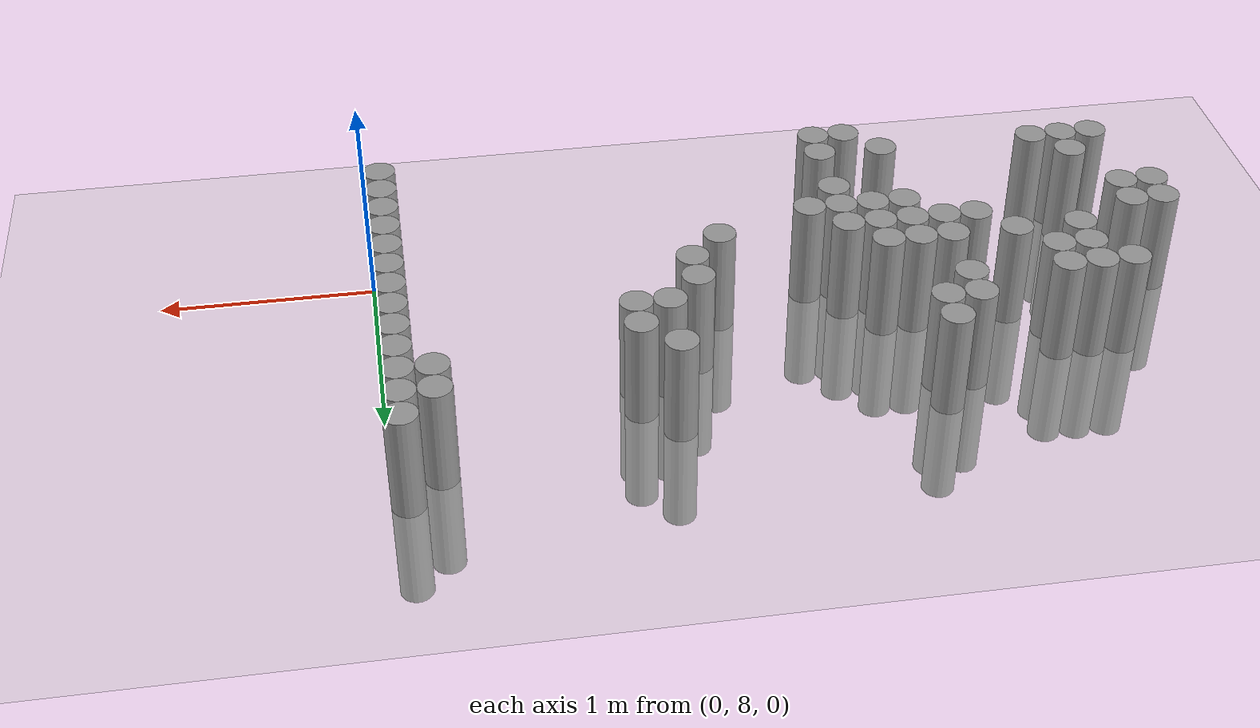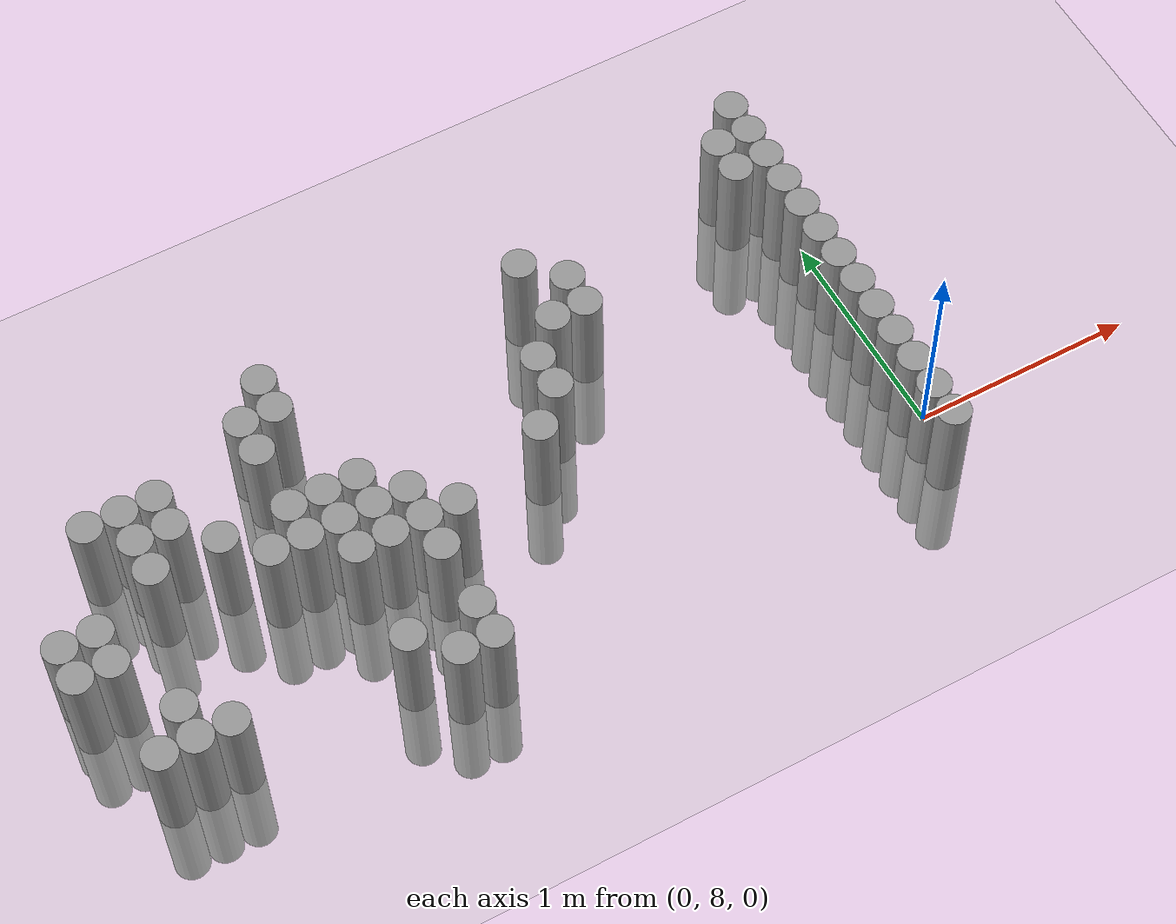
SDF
<sdf version="1.6">
 <world name="default">
  <model name="ground_plane">
   <static>1</static>
   <static>1</static>
   <link name="link">
    <collision name="collision">
     <geometry><plane><normal>0 0 1</normal><size>100 100</size></plane></geometry>
     <surface><friction><ode><mu>100</mu><mu2>50</mu2></ode></friction></surface>
    </collision>
    <visual name="visual">
     <cast_shadows>0</cast_shadows>
     <geometry><plane><normal>0 0 1</normal><size>100 100</size></plane></geometry>
     <material>
      <script><uri>file://media/materials/scripts/gazebo.material</uri><name>Gazebo/Grey</name></script>
     </material>
    </visual>
   </link>
  </model>
  <model name="unit_cylinder_162">
   <static>1</static>
   <pose>-3.675000 8.325000 0.000000 0.000000 0.000000 0.000000</pose>
   <link name="link">
    <inertial>
     <mass>1</mass>
     <inertia><ixx>0.145833</ixx><ixy>0</ixy><ixz>0</ixz><iyy>0.145833</iyy><iyz>0</iyz><izz>0.125</izz></inertia>
    </inertial>
    <collision name="collision">
     <geometry><cylinder><radius>0.075000</radius><length>1</length></cylinder></geometry>
    </collision>
    <visual name="visual">
     <geometry><cylinder><radius>0.075000</radius><length>1</length></cylinder></geometry>
     <material>
      <script><name>Gazebo/Grey</name><uri>file://media/materials/scripts/gazebo.material</uri></script>
     </material>
    </visual>
   </link>
  </model>
  <model name="unit_cylinder_163">
   <static>1</static>
   <pose>-3.675000 8.475000 0.000000 0.000000 0.000000 0.000000</pose>
   <link name="link">
    <inertial>
     <mass>1</mass>
     <inertia><ixx>0.145833</ixx><ixy>0</ixy><ixz>0</ixz><iyy>0.145833</iyy><iyz>0</iyz><izz>0.125</izz></inertia>
    </inertial>
    <collision name="collision">
     <geometry><cylinder><radius>0.075000</radius><length>1</length></cylinder></geometry>
    </collision>
    <visual name="visual">
     <geometry><cylinder><radius>0.075000</radius><length>1</length></cylinder></geometry>
     <material>
      <script><name>Gazebo/Grey</name><uri>file://media/materials/scripts/gazebo.material</uri></script>
     </material>
    </visual>
   </link>
  </model>
  <model name="unit_cylinder_168">
   <static>1</static>
   <pose>-3.525000 7.875000 0.000000 0.000000 0.000000 0.000000</pose>
   <link name="link">
    <inertial>
     <mass>1</mass>
     <inertia><ixx>0.145833</ixx><ixy>0</ixy><ixz>0</ixz><iyy>0.145833</iyy><iyz>0</iyz><izz>0.125</izz></inertia>
    </inertial>
    <collision name="collision">
     <geometry><cylinder><radius>0.075000</radius><length>1</length></cylinder></geometry>
    </collision>
    <visual name="visual">
     <geometry><cylinder><radius>0.075000</radius><length>1</length></cylinder></geometry>
     <material>
      <script><name>Gazebo/Grey</name><uri>file://media/materials/scripts/gazebo.material</uri></script>
     </material>
    </visual>
   </link>
  </model>
  <model name="unit_cylinder_169">
   <static>1</static>
   <pose>-3.525000 8.325000 0.000000 0.000000 0.000000 0.000000</pose>
   <link name="link">
    <inertial>
     <mass>1</mass>
     <inertia><ixx>0.145833</ixx><ixy>0</ixy><ixz>0</ixz><iyy>0.145833</iyy><iyz>0</iyz><izz>0.125</izz></inertia>
    </inertial>
    <collision name="collision">
     <geometry><cylinder><radius>0.075000</radius><length>1</length></cylinder></geometry>
    </collision>
    <visual name="visual">
     <geometry><cylinder><radius>0.075000</radius><length>1</length></cylinder></geometry>
     <material>
      <script><name>Gazebo/Grey</name><uri>file://media/materials/scripts/gazebo.material</uri></script>
     </material>
    </visual>
   </link>
  </model>
  <model name="unit_cylinder_170">
   <static>1</static>
   <pose>-3.525000 8.475000 0.000000 0.000000 0.000000 0.000000</pose>
   <link name="link">
    <inertial>
     <mass>1</mass>
     <inertia><ixx>0.145833</ixx><ixy>0</ixy><ixz>0</ixz><iyy>0.145833</iyy><iyz>0</iyz><izz>0.125</izz></inertia>
    </inertial>
    <collision name="collision">
     <geometry><cylinder><radius>0.075000</radius><length>1</length></cylinder></geometry>
    </collision>
    <visual name="visual">
     <geometry><cylinder><radius>0.075000</radius><length>1</length></cylinder></geometry>
     <material>
      <script><name>Gazebo/Grey</name><uri>file://media/materials/scripts/gazebo.material</uri></script>
     </material>
    </visual>
   </link>
  </model>
  <model name="unit_cylinder_173">
   <static>1</static>
   <pose>-3.375000 7.875000 0.000000 0.000000 0.000000 0.000000</pose>
   <link name="link">
    <inertial>
     <mass>1</mass>
     <inertia><ixx>0.145833</ixx><ixy>0</ixy><ixz>0</ixz><iyy>0.145833</iyy><iyz>0</iyz><izz>0.125</izz></inertia>
    </inertial>
    <collision name="collision">
     <geometry><cylinder><radius>0.075000</radius><length>1</length></cylinder></geometry>
    </collision>
    <visual name="visual">
     <geometry><cylinder><radius>0.075000</radius><length>1</length></cylinder></geometry>
     <material>
      <script><name>Gazebo/Grey</name><uri>file://media/materials/scripts/gazebo.material</uri></script>
     </material>
    </visual>
   </link>
  </model>
  <model name="unit_cylinder_174">
   <static>1</static>
   <pose>-3.375000 8.025000 0.000000 0.000000 0.000000 0.000000</pose>
   <link name="link">
    <inertial>
     <mass>1</mass>
     <inertia><ixx>0.145833</ixx><ixy>0</ixy><ixz>0</ixz><iyy>0.145833</iyy><iyz>0</iyz><izz>0.125</izz></inertia>
    </inertial>
    <collision name="collision">
     <geometry><cylinder><radius>0.075000</radius><length>1</length></cylinder></geometry>
    </collision>
    <visual name="visual">
     <geometry><cylinder><radius>0.075000</radius><length>1</length></cylinder></geometry>
     <material>
      <script><name>Gazebo/Grey</name><uri>file://media/materials/scripts/gazebo.material</uri></script>
     </material>
    </visual>
   </link>
  </model>
  <model name="unit_cylinder_175">
   <static>1</static>
   <pose>-3.375000 8.925000 0.000000 0.000000 0.000000 0.000000</pose>
   <link name="link">
    <inertial>
     <mass>1</mass>
     <inertia><ixx>0.145833</ixx><ixy>0</ixy><ixz>0</ixz><iyy>0.145833</iyy><iyz>0</iyz><izz>0.125</izz></inertia>
    </inertial>
    <collision name="collision">
     <geometry><cylinder><radius>0.075000</radius><length>1</length></cylinder></geometry>
    </collision>
    <visual name="visual">
     <geometry><cylinder><radius>0.075000</radius><length>1</length></cylinder></geometry>
     <material>
      <script><name>Gazebo/Grey</name><uri>file://media/materials/scripts/gazebo.material</uri></script>
     </material>
    </visual>
   </link>
  </model>
  <model name="unit_cylinder_176">
   <static>1</static>
   <pose>-3.225000 7.875000 0.000000 0.000000 0.000000 0.000000</pose>
   <link name="link">
    <inertial>
     <mass>1</mass>
     <inertia><ixx>0.145833</ixx><ixy>0</ixy><ixz>0</ixz><iyy>0.145833</iyy><iyz>0</iyz><izz>0.125</izz></inertia>
    </inertial>
    <collision name="collision">
     <geometry><cylinder><radius>0.075000</radius><length>1</length></cylinder></geometry>
    </collision>
    <visual name="visual">
     <geometry><cylinder><radius>0.075000</radius><length>1</length></cylinder></geometry>
     <material>
      <script><name>Gazebo/Grey</name><uri>file://media/materials/scripts/gazebo.material</uri></script>
     </material>
    </visual>
   </link>
  </model>
  <model name="unit_cylinder_177">
   <static>1</static>
   <pose>-3.225000 8.625000 0.000000 0.000000 0.000000 0.000000</pose>
   <link name="link">
    <inertial>
     <mass>1</mass>
     <inertia><ixx>0.145833</ixx><ixy>0</ixy><ixz>0</ixz><iyy>0.145833</iyy><iyz>0</iyz><izz>0.125</izz></inertia>
    </inertial>
    <collision name="collision">
     <geometry><cylinder><radius>0.075000</radius><length>1</length></cylinder></geometry>
    </collision>
    <visual name="visual">
     <geometry><cylinder><radius>0.075000</radius><length>1</length></cylinder></geometry>
     <material>
      <script><name>Gazebo/Grey</name><uri>file://media/materials/scripts/gazebo.material</uri></script>
     </material>
    </visual>
   </link>
  </model>
  <model name="unit_cylinder_178">
   <static>1</static>
   <pose>-3.225000 8.775000 0.000000 0.000000 0.000000 0.000000</pose>
   <link name="link">
    <inertial>
     <mass>1</mass>
     <inertia><ixx>0.145833</ixx><ixy>0</ixy><ixz>0</ixz><iyy>0.145833</iyy><iyz>0</iyz><izz>0.125</izz></inertia>
    </inertial>
    <collision name="collision">
     <geometry><cylinder><radius>0.075000</radius><length>1</length></cylinder></geometry>
    </collision>
    <visual name="visual">
     <geometry><cylinder><radius>0.075000</radius><length>1</length></cylinder></geometry>
     <material>
      <script><name>Gazebo/Grey</name><uri>file://media/materials/scripts/gazebo.material</uri></script>
     </material>
    </visual>
   </link>
  </model>
  <model name="unit_cylinder_179">
   <static>1</static>
   <pose>-3.225000 8.925000 0.000000 0.000000 0.000000 0.000000</pose>
   <link name="link">
    <inertial>
     <mass>1</mass>
     <inertia><ixx>0.145833</ixx><ixy>0</ixy><ixz>0</ixz><iyy>0.145833</iyy><iyz>0</iyz><izz>0.125</izz></inertia>
    </inertial>
    <collision name="collision">
     <geometry><cylinder><radius>0.075000</radius><length>1</length></cylinder></geometry>
    </collision>
    <visual name="visual">
     <geometry><cylinder><radius>0.075000</radius><length>1</length></cylinder></geometry>
     <material>
      <script><name>Gazebo/Grey</name><uri>file://media/materials/scripts/gazebo.material</uri></script>
     </material>
    </visual>
   </link>
  </model>
  <model name="unit_cylinder_181">
   <static>1</static>
   <pose>-3.075000 8.775000 0.000000 0.000000 0.000000 0.000000</pose>
   <link name="link">
    <inertial>
     <mass>1</mass>
     <inertia><ixx>0.145833</ixx><ixy>0</ixy><ixz>0</ixz><iyy>0.145833</iyy><iyz>0</iyz><izz>0.125</izz></inertia>
    </inertial>
    <collision name="collision">
     <geometry><cylinder><radius>0.075000</radius><length>1</length></cylinder></geometry>
    </collision>
    <visual name="visual">
     <geometry><cylinder><radius>0.075000</radius><length>1</length></cylinder></geometry>
     <material>
      <script><name>Gazebo/Grey</name><uri>file://media/materials/scripts/gazebo.material</uri></script>
     </material>
    </visual>
   </link>
  </model>
  <model name="unit_cylinder_182">
   <static>1</static>
   <pose>-3.075000 8.925000 0.000000 0.000000 0.000000 0.000000</pose>
   <link name="link">
    <inertial>
     <mass>1</mass>
     <inertia><ixx>0.145833</ixx><ixy>0</ixy><ixz>0</ixz><iyy>0.145833</iyy><iyz>0</iyz><izz>0.125</izz></inertia>
    </inertial>
    <collision name="collision">
     <geometry><cylinder><radius>0.075000</radius><length>1</length></cylinder></geometry>
    </collision>
    <visual name="visual">
     <geometry><cylinder><radius>0.075000</radius><length>1</length></cylinder></geometry>
     <material>
      <script><name>Gazebo/Grey</name><uri>file://media/materials/scripts/gazebo.material</uri></script>
     </material>
    </visual>
   </link>
  </model>
  <model name="unit_cylinder_187">
   <static>1</static>
   <pose>-2.925000 8.625000 0.000000 0.000000 0.000000 0.000000</pose>
   <link name="link">
    <inertial>
     <mass>1</mass>
     <inertia><ixx>0.145833</ixx><ixy>0</ixy><ixz>0</ixz><iyy>0.145833</iyy><iyz>0</iyz><izz>0.125</izz></inertia>
    </inertial>
    <collision name="collision">
     <geometry><cylinder><radius>0.075000</radius><length>1</length></cylinder></geometry>
    </collision>
    <visual name="visual">
     <geometry><cylinder><radius>0.075000</radius><length>1</length></cylinder></geometry>
     <material>
      <script><name>Gazebo/Grey</name><uri>file://media/materials/scripts/gazebo.material</uri></script>
     </material>
    </visual>
   </link>
  </model>
  <model name="unit_cylinder_194">
   <static>1</static>
   <pose>-2.775000 8.475000 0.000000 0.000000 0.000000 0.000000</pose>
   <link name="link">
    <inertial>
     <mass>1</mass>
     <inertia><ixx>0.145833</ixx><ixy>0</ixy><ixz>0</ixz><iyy>0.145833</iyy><iyz>0</iyz><izz>0.125</izz></inertia>
    </inertial>
    <collision name="collision">
     <geometry><cylinder><radius>0.075000</radius><length>1</length></cylinder></geometry>
    </collision>
    <visual name="visual">
     <geometry><cylinder><radius>0.075000</radius><length>1</length></cylinder></geometry>
     <material>
      <script><name>Gazebo/Grey</name><uri>file://media/materials/scripts/gazebo.material</uri></script>
     </material>
    </visual>
   </link>
  </model>
  <model name="unit_cylinder_198">
   <static>1</static>
   <pose>-2.625000 8.475000 0.000000 0.000000 0.000000 0.000000</pose>
   <link name="link">
    <inertial>
     <mass>1</mass>
     <inertia><ixx>0.145833</ixx><ixy>0</ixy><ixz>0</ixz><iyy>0.145833</iyy><iyz>0</iyz><izz>0.125</izz></inertia>
    </inertial>
    <collision name="collision">
     <geometry><cylinder><radius>0.075000</radius><length>1</length></cylinder></geometry>
    </collision>
    <visual name="visual">
     <geometry><cylinder><radius>0.075000</radius><length>1</length></cylinder></geometry>
     <material>
      <script><name>Gazebo/Grey</name><uri>file://media/materials/scripts/gazebo.material</uri></script>
     </material>
    </visual>
   </link>
  </model>
  <model name="unit_cylinder_199">
   <static>1</static>
   <pose>-2.625000 8.625000 0.000000 0.000000 0.000000 0.000000</pose>
   <link name="link">
    <inertial>
     <mass>1</mass>
     <inertia><ixx>0.145833</ixx><ixy>0</ixy><ixz>0</ixz><iyy>0.145833</iyy><iyz>0</iyz><izz>0.125</izz></inertia>
    </inertial>
    <collision name="collision">
     <geometry><cylinder><radius>0.075000</radius><length>1</length></cylinder></geometry>
    </collision>
    <visual name="visual">
     <geometry><cylinder><radius>0.075000</radius><length>1</length></cylinder></geometry>
     <material>
      <script><name>Gazebo/Grey</name><uri>file://media/materials/scripts/gazebo.material</uri></script>
     </material>
    </visual>
   </link>
  </model>
  <model name="unit_cylinder_200">
   <static>1</static>
   <pose>-2.625000 8.925000 0.000000 0.000000 0.000000 0.000000</pose>
   <link name="link">
    <inertial>
     <mass>1</mass>
     <inertia><ixx>0.145833</ixx><ixy>0</ixy><ixz>0</ixz><iyy>0.145833</iyy><iyz>0</iyz><izz>0.125</izz></inertia>
    </inertial>
    <collision name="collision">
     <geometry><cylinder><radius>0.075000</radius><length>1</length></cylinder></geometry>
    </collision>
    <visual name="visual">
     <geometry><cylinder><radius>0.075000</radius><length>1</length></cylinder></geometry>
     <material>
      <script><name>Gazebo/Grey</name><uri>file://media/materials/scripts/gazebo.material</uri></script>
     </material>
    </visual>
   </link>
  </model>
  <model name="unit_cylinder_201">
   <static>1</static>
   <pose>-2.625000 9.075000 0.000000 0.000000 0.000000 0.000000</pose>
   <link name="link">
    <inertial>
     <mass>1</mass>
     <inertia><ixx>0.145833</ixx><ixy>0</ixy><ixz>0</ixz><iyy>0.145833</iyy><iyz>0</iyz><izz>0.125</izz></inertia>
    </inertial>
    <collision name="collision">
     <geometry><cylinder><radius>0.075000</radius><length>1</length></cylinder></geometry>
    </collision>
    <visual name="visual">
     <geometry><cylinder><radius>0.075000</radius><length>1</length></cylinder></geometry>
     <material>
      <script><name>Gazebo/Grey</name><uri>file://media/materials/scripts/gazebo.material</uri></script>
     </material>
    </visual>
   </link>
  </model>
  <model name="unit_cylinder_203">
   <static>1</static>
   <pose>-2.475000 7.875000 0.000000 0.000000 0.000000 0.000000</pose>
   <link name="link">
    <inertial>
     <mass>1</mass>
     <inertia><ixx>0.145833</ixx><ixy>0</ixy><ixz>0</ixz><iyy>0.145833</iyy><iyz>0</iyz><izz>0.125</izz></inertia>
    </inertial>
    <collision name="collision">
     <geometry><cylinder><radius>0.075000</radius><length>1</length></cylinder></geometry>
    </collision>
    <visual name="visual">
     <geometry><cylinder><radius>0.075000</radius><length>1</length></cylinder></geometry>
     <material>
      <script><name>Gazebo/Grey</name><uri>file://media/materials/scripts/gazebo.material</uri></script>
     </material>
    </visual>
   </link>
  </model>
  <model name="unit_cylinder_204">
   <static>1</static>
   <pose>-2.475000 8.325000 0.000000 0.000000 0.000000 0.000000</pose>
   <link name="link">
    <inertial>
     <mass>1</mass>
     <inertia><ixx>0.145833</ixx><ixy>0</ixy><ixz>0</ixz><iyy>0.145833</iyy><iyz>0</iyz><izz>0.125</izz></inertia>
    </inertial>
    <collision name="collision">
     <geometry><cylinder><radius>0.075000</radius><length>1</length></cylinder></geometry>
    </collision>
    <visual name="visual">
     <geometry><cylinder><radius>0.075000</radius><length>1</length></cylinder></geometry>
     <material>
      <script><name>Gazebo/Grey</name><uri>file://media/materials/scripts/gazebo.material</uri></script>
     </material>
    </visual>
   </link>
  </model>
  <model name="unit_cylinder_205">
   <static>1</static>
   <pose>-2.475000 8.475000 0.000000 0.000000 0.000000 0.000000</pose>
   <link name="link">
    <inertial>
     <mass>1</mass>
     <inertia><ixx>0.145833</ixx><ixy>0</ixy><ixz>0</ixz><iyy>0.145833</iyy><iyz>0</iyz><izz>0.125</izz></inertia>
    </inertial>
    <collision name="collision">
     <geometry><cylinder><radius>0.075000</radius><length>1</length></cylinder></geometry>
    </collision>
    <visual name="visual">
     <geometry><cylinder><radius>0.075000</radius><length>1</length></cylinder></geometry>
     <material>
      <script><name>Gazebo/Grey</name><uri>file://media/materials/scripts/gazebo.material</uri></script>
     </material>
    </visual>
   </link>
  </model>
  <model name="unit_cylinder_206">
   <static>1</static>
   <pose>-2.475000 8.625000 0.000000 0.000000 0.000000 0.000000</pose>
   <link name="link">
    <inertial>
     <mass>1</mass>
     <inertia><ixx>0.145833</ixx><ixy>0</ixy><ixz>0</ixz><iyy>0.145833</iyy><iyz>0</iyz><izz>0.125</izz></inertia>
    </inertial>
    <collision name="collision">
     <geometry><cylinder><radius>0.075000</radius><length>1</length></cylinder></geometry>
    </collision>
    <visual name="visual">
     <geometry><cylinder><radius>0.075000</radius><length>1</length></cylinder></geometry>
     <material>
      <script><name>Gazebo/Grey</name><uri>file://media/materials/scripts/gazebo.material</uri></script>
     </material>
    </visual>
   </link>
  </model>
  <model name="unit_cylinder_207">
   <static>1</static>
   <pose>-2.475000 9.075000 0.000000 0.000000 0.000000 0.000000</pose>
   <link name="link">
    <inertial>
     <mass>1</mass>
     <inertia><ixx>0.145833</ixx><ixy>0</ixy><ixz>0</ixz><iyy>0.145833</iyy><iyz>0</iyz><izz>0.125</izz></inertia>
    </inertial>
    <collision name="collision">
     <geometry><cylinder><radius>0.075000</radius><length>1</length></cylinder></geometry>
    </collision>
    <visual name="visual">
     <geometry><cylinder><radius>0.075000</radius><length>1</length></cylinder></geometry>
     <material>
      <script><name>Gazebo/Grey</name><uri>file://media/materials/scripts/gazebo.material</uri></script>
     </material>
    </visual>
   </link>
  </model>
  <model name="unit_cylinder_208">
   <static>1</static>
   <pose>-2.475000 9.225000 0.000000 0.000000 0.000000 0.000000</pose>
   <link name="link">
    <inertial>
     <mass>1</mass>
     <inertia><ixx>0.145833</ixx><ixy>0</ixy><ixz>0</ixz><iyy>0.145833</iyy><iyz>0</iyz><izz>0.125</izz></inertia>
    </inertial>
    <collision name="collision">
     <geometry><cylinder><radius>0.075000</radius><length>1</length></cylinder></geometry>
    </collision>
    <visual name="visual">
     <geometry><cylinder><radius>0.075000</radius><length>1</length></cylinder></geometry>
     <material>
      <script><name>Gazebo/Grey</name><uri>file://media/materials/scripts/gazebo.material</uri></script>
     </material>
    </visual>
   </link>
  </model>
  <model name="unit_cylinder_210">
   <static>1</static>
   <pose>-2.325000 7.725000 0.000000 0.000000 0.000000 0.000000</pose>
   <link name="link">
    <inertial>
     <mass>1</mass>
     <inertia><ixx>0.145833</ixx><ixy>0</ixy><ixz>0</ixz><iyy>0.145833</iyy><iyz>0</iyz><izz>0.125</izz></inertia>
    </inertial>
    <collision name="collision">
     <geometry><cylinder><radius>0.075000</radius><length>1</length></cylinder></geometry>
    </collision>
    <visual name="visual">
     <geometry><cylinder><radius>0.075000</radius><length>1</length></cylinder></geometry>
     <material>
      <script><name>Gazebo/Grey</name><uri>file://media/materials/scripts/gazebo.material</uri></script>
     </material>
    </visual>
   </link>
  </model>
  <model name="unit_cylinder_211">
   <static>1</static>
   <pose>-2.325000 8.325000 0.000000 0.000000 0.000000 0.000000</pose>
   <link name="link">
    <inertial>
     <mass>1</mass>
     <inertia><ixx>0.145833</ixx><ixy>0</ixy><ixz>0</ixz><iyy>0.145833</iyy><iyz>0</iyz><izz>0.125</izz></inertia>
    </inertial>
    <collision name="collision">
     <geometry><cylinder><radius>0.075000</radius><length>1</length></cylinder></geometry>
    </collision>
    <visual name="visual">
     <geometry><cylinder><radius>0.075000</radius><length>1</length></cylinder></geometry>
     <material>
      <script><name>Gazebo/Grey</name><uri>file://media/materials/scripts/gazebo.material</uri></script>
     </material>
    </visual>
   </link>
  </model>
  <model name="unit_cylinder_212">
   <static>1</static>
   <pose>-2.325000 8.475000 0.000000 0.000000 0.000000 0.000000</pose>
   <link name="link">
    <inertial>
     <mass>1</mass>
     <inertia><ixx>0.145833</ixx><ixy>0</ixy><ixz>0</ixz><iyy>0.145833</iyy><iyz>0</iyz><izz>0.125</izz></inertia>
    </inertial>
    <collision name="collision">
     <geometry><cylinder><radius>0.075000</radius><length>1</length></cylinder></geometry>
    </collision>
    <visual name="visual">
     <geometry><cylinder><radius>0.075000</radius><length>1</length></cylinder></geometry>
     <material>
      <script><name>Gazebo/Grey</name><uri>file://media/materials/scripts/gazebo.material</uri></script>
     </material>
    </visual>
   </link>
  </model>
  <model name="unit_cylinder_213">
   <static>1</static>
   <pose>-2.325000 8.625000 0.000000 0.000000 0.000000 0.000000</pose>
   <link name="link">
    <inertial>
     <mass>1</mass>
     <inertia><ixx>0.145833</ixx><ixy>0</ixy><ixz>0</ixz><iyy>0.145833</iyy><iyz>0</iyz><izz>0.125</izz></inertia>
    </inertial>
    <collision name="collision">
     <geometry><cylinder><radius>0.075000</radius><length>1</length></cylinder></geometry>
    </collision>
    <visual name="visual">
     <geometry><cylinder><radius>0.075000</radius><length>1</length></cylinder></geometry>
     <material>
      <script><name>Gazebo/Grey</name><uri>file://media/materials/scripts/gazebo.material</uri></script>
     </material>
    </visual>
   </link>
  </model>
  <model name="unit_cylinder_216">
   <static>1</static>
   <pose>-2.175000 7.725000 0.000000 0.000000 0.000000 0.000000</pose>
   <link name="link">
    <inertial>
     <mass>1</mass>
     <inertia><ixx>0.145833</ixx><ixy>0</ixy><ixz>0</ixz><iyy>0.145833</iyy><iyz>0</iyz><izz>0.125</izz></inertia>
    </inertial>
    <collision name="collision">
     <geometry><cylinder><radius>0.075000</radius><length>1</length></cylinder></geometry>
    </collision>
    <visual name="visual">
     <geometry><cylinder><radius>0.075000</radius><length>1</length></cylinder></geometry>
     <material>
      <script><name>Gazebo/Grey</name><uri>file://media/materials/scripts/gazebo.material</uri></script>
     </material>
    </visual>
   </link>
  </model>
  <model name="unit_cylinder_217">
   <static>1</static>
   <pose>-2.175000 7.875000 0.000000 0.000000 0.000000 0.000000</pose>
   <link name="link">
    <inertial>
     <mass>1</mass>
     <inertia><ixx>0.145833</ixx><ixy>0</ixy><ixz>0</ixz><iyy>0.145833</iyy><iyz>0</iyz><izz>0.125</izz></inertia>
    </inertial>
    <collision name="collision">
     <geometry><cylinder><radius>0.075000</radius><length>1</length></cylinder></geometry>
    </collision>
    <visual name="visual">
     <geometry><cylinder><radius>0.075000</radius><length>1</length></cylinder></geometry>
     <material>
      <script><name>Gazebo/Grey</name><uri>file://media/materials/scripts/gazebo.material</uri></script>
     </material>
    </visual>
   </link>
  </model>
  <model name="unit_cylinder_218">
   <static>1</static>
   <pose>-2.175000 8.175000 0.000000 0.000000 0.000000 0.000000</pose>
   <link name="link">
    <inertial>
     <mass>1</mass>
     <inertia><ixx>0.145833</ixx><ixy>0</ixy><ixz>0</ixz><iyy>0.145833</iyy><iyz>0</iyz><izz>0.125</izz></inertia>
    </inertial>
    <collision name="collision">
     <geometry><cylinder><radius>0.075000</radius><length>1</length></cylinder></geometry>
    </collision>
    <visual name="visual">
     <geometry><cylinder><radius>0.075000</radius><length>1</length></cylinder></geometry>
     <material>
      <script><name>Gazebo/Grey</name><uri>file://media/materials/scripts/gazebo.material</uri></script>
     </material>
    </visual>
   </link>
  </model>
  <model name="unit_cylinder_219">
   <static>1</static>
   <pose>-2.175000 8.325000 0.000000 0.000000 0.000000 0.000000</pose>
   <link name="link">
    <inertial>
     <mass>1</mass>
     <inertia><ixx>0.145833</ixx><ixy>0</ixy><ixz>0</ixz><iyy>0.145833</iyy><iyz>0</iyz><izz>0.125</izz></inertia>
    </inertial>
    <collision name="collision">
     <geometry><cylinder><radius>0.075000</radius><length>1</length></cylinder></geometry>
    </collision>
    <visual name="visual">
     <geometry><cylinder><radius>0.075000</radius><length>1</length></cylinder></geometry>
     <material>
      <script><name>Gazebo/Grey</name><uri>file://media/materials/scripts/gazebo.material</uri></script>
     </material>
    </visual>
   </link>
  </model>
  <model name="unit_cylinder_220">
   <static>1</static>
   <pose>-2.175000 8.475000 0.000000 0.000000 0.000000 0.000000</pose>
   <link name="link">
    <inertial>
     <mass>1</mass>
     <inertia><ixx>0.145833</ixx><ixy>0</ixy><ixz>0</ixz><iyy>0.145833</iyy><iyz>0</iyz><izz>0.125</izz></inertia>
    </inertial>
    <collision name="collision">
     <geometry><cylinder><radius>0.075000</radius><length>1</length></cylinder></geometry>
    </collision>
    <visual name="visual">
     <geometry><cylinder><radius>0.075000</radius><length>1</length></cylinder></geometry>
     <material>
      <script><name>Gazebo/Grey</name><uri>file://media/materials/scripts/gazebo.material</uri></script>
     </material>
    </visual>
   </link>
  </model>
  <model name="unit_cylinder_221">
   <static>1</static>
   <pose>-2.025000 8.325000 0.000000 0.000000 0.000000 0.000000</pose>
   <link name="link">
    <inertial>
     <mass>1</mass>
     <inertia><ixx>0.145833</ixx><ixy>0</ixy><ixz>0</ixz><iyy>0.145833</iyy><iyz>0</iyz><izz>0.125</izz></inertia>
    </inertial>
    <collision name="collision">
     <geometry><cylinder><radius>0.075000</radius><length>1</length></cylinder></geometry>
    </collision>
    <visual name="visual">
     <geometry><cylinder><radius>0.075000</radius><length>1</length></cylinder></geometry>
     <material>
      <script><name>Gazebo/Grey</name><uri>file://media/materials/scripts/gazebo.material</uri></script>
     </material>
    </visual>
   </link>
  </model>
  <model name="unit_cylinder_226">
   <static>1</static>
   <pose>-1.575000 8.475000 0.000000 0.000000 0.000000 0.000000</pose>
   <link name="link">
    <inertial>
     <mass>1</mass>
     <inertia><ixx>0.145833</ixx><ixy>0</ixy><ixz>0</ixz><iyy>0.145833</iyy><iyz>0</iyz><izz>0.125</izz></inertia>
    </inertial>
    <collision name="collision">
     <geometry><cylinder><radius>0.075000</radius><length>1</length></cylinder></geometry>
    </collision>
    <visual name="visual">
     <geometry><cylinder><radius>0.075000</radius><length>1</length></cylinder></geometry>
     <material>
      <script><name>Gazebo/Grey</name><uri>file://media/materials/scripts/gazebo.material</uri></script>
     </material>
    </visual>
   </link>
  </model>
  <model name="unit_cylinder_228">
   <static>1</static>
   <pose>-1.425000 8.625000 0.000000 0.000000 0.000000 0.000000</pose>
   <link name="link">
    <inertial>
     <mass>1</mass>
     <inertia><ixx>0.145833</ixx><ixy>0</ixy><ixz>0</ixz><iyy>0.145833</iyy><iyz>0</iyz><izz>0.125</izz></inertia>
    </inertial>
    <collision name="collision">
     <geometry><cylinder><radius>0.075000</radius><length>1</length></cylinder></geometry>
    </collision>
    <visual name="visual">
     <geometry><cylinder><radius>0.075000</radius><length>1</length></cylinder></geometry>
     <material>
      <script><name>Gazebo/Grey</name><uri>file://media/materials/scripts/gazebo.material</uri></script>
     </material>
    </visual>
   </link>
  </model>
  <model name="unit_cylinder_229">
   <static>1</static>
   <pose>-1.425000 8.775000 0.000000 0.000000 0.000000 0.000000</pose>
   <link name="link">
    <inertial>
     <mass>1</mass>
     <inertia><ixx>0.145833</ixx><ixy>0</ixy><ixz>0</ixz><iyy>0.145833</iyy><iyz>0</iyz><izz>0.125</izz></inertia>
    </inertial>
    <collision name="collision">
     <geometry><cylinder><radius>0.075000</radius><length>1</length></cylinder></geometry>
    </collision>
    <visual name="visual">
     <geometry><cylinder><radius>0.075000</radius><length>1</length></cylinder></geometry>
     <material>
      <script><name>Gazebo/Grey</name><uri>file://media/materials/scripts/gazebo.material</uri></script>
     </material>
    </visual>
   </link>
  </model>
  <model name="unit_cylinder_230">
   <static>1</static>
   <pose>-1.275000 8.925000 0.000000 0.000000 0.000000 0.000000</pose>
   <link name="link">
    <inertial>
     <mass>1</mass>
     <inertia><ixx>0.145833</ixx><ixy>0</ixy><ixz>0</ixz><iyy>0.145833</iyy><iyz>0</iyz><izz>0.125</izz></inertia>
    </inertial>
    <collision name="collision">
     <geometry><cylinder><radius>0.075000</radius><length>1</length></cylinder></geometry>
    </collision>
    <visual name="visual">
     <geometry><cylinder><radius>0.075000</radius><length>1</length></cylinder></geometry>
     <material>
      <script><name>Gazebo/Grey</name><uri>file://media/materials/scripts/gazebo.material</uri></script>
     </material>
    </visual>
   </link>
  </model>
  <model name="unit_cylinder_231">
   <static>1</static>
   <pose>-1.275000 9.225000 0.000000 0.000000 0.000000 0.000000</pose>
   <link name="link">
    <inertial>
     <mass>1</mass>
     <inertia><ixx>0.145833</ixx><ixy>0</ixy><ixz>0</ixz><iyy>0.145833</iyy><iyz>0</iyz><izz>0.125</izz></inertia>
    </inertial>
    <collision name="collision">
     <geometry><cylinder><radius>0.075000</radius><length>1</length></cylinder></geometry>
    </collision>
    <visual name="visual">
     <geometry><cylinder><radius>0.075000</radius><length>1</length></cylinder></geometry>
     <material>
      <script><name>Gazebo/Grey</name><uri>file://media/materials/scripts/gazebo.material</uri></script>
     </material>
    </visual>
   </link>
  </model>
  <model name="unit_cylinder_232">
   <static>1</static>
   <pose>-1.125000 8.925000 0.000000 0.000000 0.000000 0.000000</pose>
   <link name="link">
    <inertial>
     <mass>1</mass>
     <inertia><ixx>0.145833</ixx><ixy>0</ixy><ixz>0</ixz><iyy>0.145833</iyy><iyz>0</iyz><izz>0.125</izz></inertia>
    </inertial>
    <collision name="collision">
     <geometry><cylinder><radius>0.075000</radius><length>1</length></cylinder></geometry>
    </collision>
    <visual name="visual">
     <geometry><cylinder><radius>0.075000</radius><length>1</length></cylinder></geometry>
     <material>
      <script><name>Gazebo/Grey</name><uri>file://media/materials/scripts/gazebo.material</uri></script>
     </material>
    </visual>
   </link>
  </model>
  <model name="unit_cylinder_233">
   <static>1</static>
   <pose>-1.125000 9.075000 0.000000 0.000000 0.000000 0.000000</pose>
   <link name="link">
    <inertial>
     <mass>1</mass>
     <inertia><ixx>0.145833</ixx><ixy>0</ixy><ixz>0</ixz><iyy>0.145833</iyy><iyz>0</iyz><izz>0.125</izz></inertia>
    </inertial>
    <collision name="collision">
     <geometry><cylinder><radius>0.075000</radius><length>1</length></cylinder></geometry>
    </collision>
    <visual name="visual">
     <geometry><cylinder><radius>0.075000</radius><length>1</length></cylinder></geometry>
     <material>
      <script><name>Gazebo/Grey</name><uri>file://media/materials/scripts/gazebo.material</uri></script>
     </material>
    </visual>
   </link>
  </model>
  <model name="unit_cylinder_258">
   <static>1</static>
   <pose>-0.225000 9.225000 0.000000 0.000000 0.000000 0.000000</pose>
   <link name="link">
    <inertial>
     <mass>1</mass>
     <inertia><ixx>0.145833</ixx><ixy>0</ixy><ixz>0</ixz><iyy>0.145833</iyy><iyz>0</iyz><izz>0.125</izz></inertia>
    </inertial>
    <collision name="collision">
     <geometry><cylinder><radius>0.075000</radius><length>1</length></cylinder></geometry>
    </collision>
    <visual name="visual">
     <geometry><cylinder><radius>0.075000</radius><length>1</length></cylinder></geometry>
     <material>
      <script><name>Gazebo/Grey</name><uri>file://media/materials/scripts/gazebo.material</uri></script>
     </material>
    </visual>
   </link>
  </model>
  <model name="unit_cylinder_259">
   <static>1</static>
   <pose>-0.225000 9.375000 0.000000 0.000000 0.000000 0.000000</pose>
   <link name="link">
    <inertial>
     <mass>1</mass>
     <inertia><ixx>0.145833</ixx><ixy>0</ixy><ixz>0</ixz><iyy>0.145833</iyy><iyz>0</iyz><izz>0.125</izz></inertia>
    </inertial>
    <collision name="collision">
     <geometry><cylinder><radius>0.075000</radius><length>1</length></cylinder></geometry>
    </collision>
    <visual name="visual">
     <geometry><cylinder><radius>0.075000</radius><length>1</length></cylinder></geometry>
     <material>
      <script><name>Gazebo/Grey</name><uri>file://media/materials/scripts/gazebo.material</uri></script>
     </material>
    </visual>
   </link>
  </model>
  <model name="unit_cylinder_277">
   <static>1</static>
   <pose>-0.075000 7.725000 0.000000 0.000000 0.000000 0.000000</pose>
   <link name="link">
    <inertial>
     <mass>1</mass>
     <inertia><ixx>0.145833</ixx><ixy>0</ixy><ixz>0</ixz><iyy>0.145833</iyy><iyz>0</iyz><izz>0.125</izz></inertia>
    </inertial>
    <collision name="collision">
     <geometry><cylinder><radius>0.075000</radius><length>1</length></cylinder></geometry>
    </collision>
    <visual name="visual">
     <geometry><cylinder><radius>0.075000</radius><length>1</length></cylinder></geometry>
     <material>
      <script><name>Gazebo/Grey</name><uri>file://media/materials/scripts/gazebo.material</uri></script>
     </material>
    </visual>
   </link>
  </model>
  <model name="unit_cylinder_278">
   <static>1</static>
   <pose>-0.075000 7.875000 0.000000 0.000000 0.000000 0.000000</pose>
   <link name="link">
    <inertial>
     <mass>1</mass>
     <inertia><ixx>0.145833</ixx><ixy>0</ixy><ixz>0</ixz><iyy>0.145833</iyy><iyz>0</iyz><izz>0.125</izz></inertia>
    </inertial>
    <collision name="collision">
     <geometry><cylinder><radius>0.075000</radius><length>1</length></cylinder></geometry>
    </collision>
    <visual name="visual">
     <geometry><cylinder><radius>0.075000</radius><length>1</length></cylinder></geometry>
     <material>
      <script><name>Gazebo/Grey</name><uri>file://media/materials/scripts/gazebo.material</uri></script>
     </material>
    </visual>
   </link>
  </model>
  <model name="unit_cylinder_279">
   <static>1</static>
   <pose>-0.075000 8.025000 0.000000 0.000000 0.000000 0.000000</pose>
   <link name="link">
    <inertial>
     <mass>1</mass>
     <inertia><ixx>0.145833</ixx><ixy>0</ixy><ixz>0</ixz><iyy>0.145833</iyy><iyz>0</iyz><izz>0.125</izz></inertia>
    </inertial>
    <collision name="collision">
     <geometry><cylinder><radius>0.075000</radius><length>1</length></cylinder></geometry>
    </collision>
    <visual name="visual">
     <geometry><cylinder><radius>0.075000</radius><length>1</length></cylinder></geometry>
     <material>
      <script><name>Gazebo/Grey</name><uri>file://media/materials/scripts/gazebo.material</uri></script>
     </material>
    </visual>
   </link>
  </model>
  <model name="unit_cylinder_280">
   <static>1</static>
   <pose>-0.075000 8.175000 0.000000 0.000000 0.000000 0.000000</pose>
   <link name="link">
    <inertial>
     <mass>1</mass>
     <inertia><ixx>0.145833</ixx><ixy>0</ixy><ixz>0</ixz><iyy>0.145833</iyy><iyz>0</iyz><izz>0.125</izz></inertia>
    </inertial>
    <collision name="collision">
     <geometry><cylinder><radius>0.075000</radius><length>1</length></cylinder></geometry>
    </collision>
    <visual name="visual">
     <geometry><cylinder><radius>0.075000</radius><length>1</length></cylinder></geometry>
     <material>
      <script><name>Gazebo/Grey</name><uri>file://media/materials/scripts/gazebo.material</uri></script>
     </material>
    </visual>
   </link>
  </model>
  <model name="unit_cylinder_281">
   <static>1</static>
   <pose>-0.075000 8.325000 0.000000 0.000000 0.000000 0.000000</pose>
   <link name="link">
    <inertial>
     <mass>1</mass>
     <inertia><ixx>0.145833</ixx><ixy>0</ixy><ixz>0</ixz><iyy>0.145833</iyy><iyz>0</iyz><izz>0.125</izz></inertia>
    </inertial>
    <collision name="collision">
     <geometry><cylinder><radius>0.075000</radius><length>1</length></cylinder></geometry>
    </collision>
    <visual name="visual">
     <geometry><cylinder><radius>0.075000</radius><length>1</length></cylinder></geometry>
     <material>
      <script><name>Gazebo/Grey</name><uri>file://media/materials/scripts/gazebo.material</uri></script>
     </material>
    </visual>
   </link>
  </model>
  <model name="unit_cylinder_282">
   <static>1</static>
   <pose>-0.075000 8.475000 0.000000 0.000000 0.000000 0.000000</pose>
   <link name="link">
    <inertial>
     <mass>1</mass>
     <inertia><ixx>0.145833</ixx><ixy>0</ixy><ixz>0</ixz><iyy>0.145833</iyy><iyz>0</iyz><izz>0.125</izz></inertia>
    </inertial>
    <collision name="collision">
     <geometry><cylinder><radius>0.075000</radius><length>1</length></cylinder></geometry>
    </collision>
    <visual name="visual">
     <geometry><cylinder><radius>0.075000</radius><length>1</length></cylinder></geometry>
     <material>
      <script><name>Gazebo/Grey</name><uri>file://media/materials/scripts/gazebo.material</uri></script>
     </material>
    </visual>
   </link>
  </model>
  <model name="unit_cylinder_283">
   <static>1</static>
   <pose>-0.075000 8.625000 0.000000 0.000000 0.000000 0.000000</pose>
   <link name="link">
    <inertial>
     <mass>1</mass>
     <inertia><ixx>0.145833</ixx><ixy>0</ixy><ixz>0</ixz><iyy>0.145833</iyy><iyz>0</iyz><izz>0.125</izz></inertia>
    </inertial>
    <collision name="collision">
     <geometry><cylinder><radius>0.075000</radius><length>1</length></cylinder></geometry>
    </collision>
    <visual name="visual">
     <geometry><cylinder><radius>0.075000</radius><length>1</length></cylinder></geometry>
     <material>
      <script><name>Gazebo/Grey</name><uri>file://media/materials/scripts/gazebo.material</uri></script>
     </material>
    </visual>
   </link>
  </model>
  <model name="unit_cylinder_284">
   <static>1</static>
   <pose>-0.075000 8.775000 0.000000 0.000000 0.000000 0.000000</pose>
   <link name="link">
    <inertial>
     <mass>1</mass>
     <inertia><ixx>0.145833</ixx><ixy>0</ixy><ixz>0</ixz><iyy>0.145833</iyy><iyz>0</iyz><izz>0.125</izz></inertia>
    </inertial>
    <collision name="collision">
     <geometry><cylinder><radius>0.075000</radius><length>1</length></cylinder></geometry>
    </collision>
    <visual name="visual">
     <geometry><cylinder><radius>0.075000</radius><length>1</length></cylinder></geometry>
     <material>
      <script><name>Gazebo/Grey</name><uri>file://media/materials/scripts/gazebo.material</uri></script>
     </material>
    </visual>
   </link>
  </model>
  <model name="unit_cylinder_285">
   <static>1</static>
   <pose>-0.075000 8.925000 0.000000 0.000000 0.000000 0.000000</pose>
   <link name="link">
    <inertial>
     <mass>1</mass>
     <inertia><ixx>0.145833</ixx><ixy>0</ixy><ixz>0</ixz><iyy>0.145833</iyy><iyz>0</iyz><izz>0.125</izz></inertia>
    </inertial>
    <collision name="collision">
     <geometry><cylinder><radius>0.075000</radius><length>1</length></cylinder></geometry>
    </collision>
    <visual name="visual">
     <geometry><cylinder><radius>0.075000</radius><length>1</length></cylinder></geometry>
     <material>
      <script><name>Gazebo/Grey</name><uri>file://media/materials/scripts/gazebo.material</uri></script>
     </material>
    </visual>
   </link>
  </model>
  <model name="unit_cylinder_286">
   <static>1</static>
   <pose>-0.075000 9.075000 0.000000 0.000000 0.000000 0.000000</pose>
   <link name="link">
    <inertial>
     <mass>1</mass>
     <inertia><ixx>0.145833</ixx><ixy>0</ixy><ixz>0</ixz><iyy>0.145833</iyy><iyz>0</iyz><izz>0.125</izz></inertia>
    </inertial>
    <collision name="collision">
     <geometry><cylinder><radius>0.075000</radius><length>1</length></cylinder></geometry>
    </collision>
    <visual name="visual">
     <geometry><cylinder><radius>0.075000</radius><length>1</length></cylinder></geometry>
     <material>
      <script><name>Gazebo/Grey</name><uri>file://media/materials/scripts/gazebo.material</uri></script>
     </material>
    </visual>
   </link>
  </model>
  <model name="unit_cylinder_287">
   <static>1</static>
   <pose>-0.075000 9.225000 0.000000 0.000000 0.000000 0.000000</pose>
   <link name="link">
    <inertial>
     <mass>1</mass>
     <inertia><ixx>0.145833</ixx><ixy>0</ixy><ixz>0</ixz><iyy>0.145833</iyy><iyz>0</iyz><izz>0.125</izz></inertia>
    </inertial>
    <collision name="collision">
     <geometry><cylinder><radius>0.075000</radius><length>1</length></cylinder></geometry>
    </collision>
    <visual name="visual">
     <geometry><cylinder><radius>0.075000</radius><length>1</length></cylinder></geometry>
     <material>
      <script><name>Gazebo/Grey</name><uri>file://media/materials/scripts/gazebo.material</uri></script>
     </material>
    </visual>
   </link>
  </model>
  <model name="unit_cylinder_288">
   <static>1</static>
   <pose>-0.075000 9.375000 0.000000 0.000000 0.000000 0.000000</pose>
   <link name="link">
    <inertial>
     <mass>1</mass>
     <inertia><ixx>0.145833</ixx><ixy>0</ixy><ixz>0</ixz><iyy>0.145833</iyy><iyz>0</iyz><izz>0.125</izz></inertia>
    </inertial>
    <collision name="collision">
     <geometry><cylinder><radius>0.075000</radius><length>1</length></cylinder></geometry>
    </collision>
    <visual name="visual">
     <geometry><cylinder><radius>0.075000</radius><length>1</length></cylinder></geometry>
     <material>
      <script><name>Gazebo/Grey</name><uri>file://media/materials/scripts/gazebo.material</uri></script>
     </material>
    </visual>
   </link>
  </model>
  <model name="unit_cylinder_289">
   <static>1</static>
   <pose>-0.075000 9.525000 0.000000 0.000000 0.000000 0.000000</pose>
   <link name="link">
    <inertial>
     <mass>1</mass>
     <inertia><ixx>0.145833</ixx><ixy>0</ixy><ixz>0</ixz><iyy>0.145833</iyy><iyz>0</iyz><izz>0.125</izz></inertia>
    </inertial>
    <collision name="collision">
     <geometry><cylinder><radius>0.075000</radius><length>1</length></cylinder></geometry>
    </collision>
    <visual name="visual">
     <geometry><cylinder><radius>0.075000</radius><length>1</length></cylinder></geometry>
     <material>
      <script><name>Gazebo/Grey</name><uri>file://media/materials/scripts/gazebo.material</uri></script>
     </material>
    </visual>
   </link>
  </model>
 </world>
</sdf>
